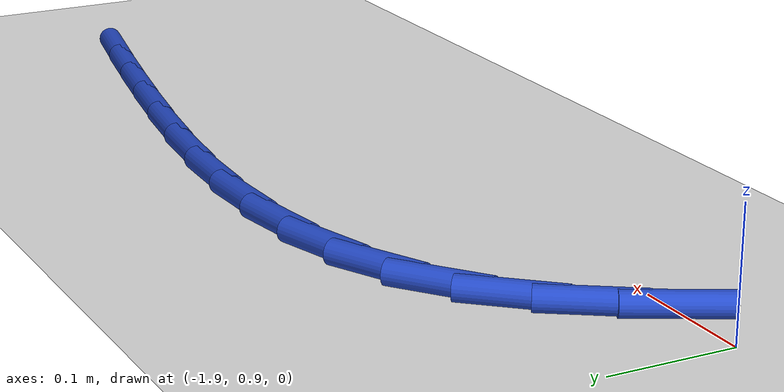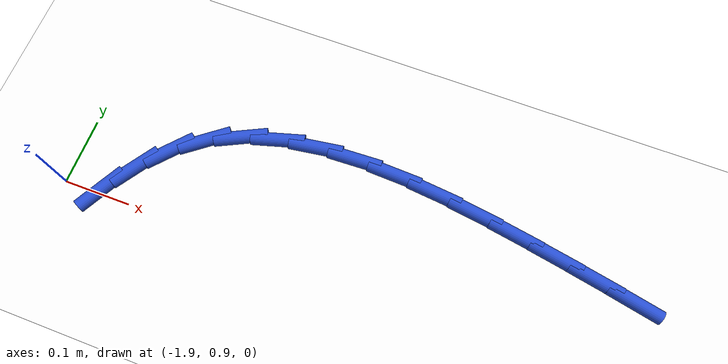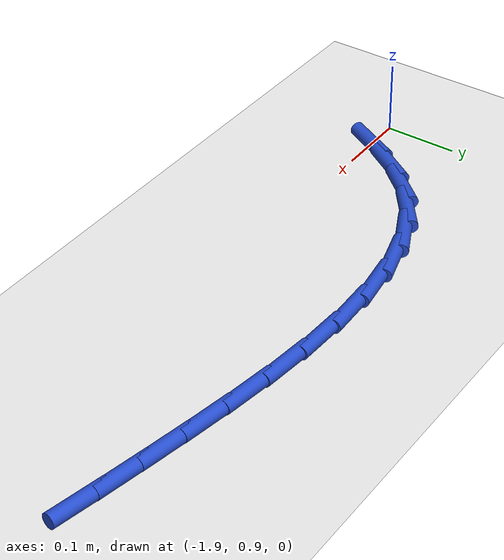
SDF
<sdf version="1.6">
 <world name="default">
  <model name="ground_plane">
   <static>1</static>
   <link name="link">
    <collision name="collision">
     <geometry><plane><normal>0 0 1</normal><size>100 100</size></plane></geometry>
     <surface><friction><ode><mu>100</mu><mu2>50</mu2></ode></friction></surface>
    </collision>
    <visual name="visual">
     <cast_shadows>0</cast_shadows>
     <geometry><plane><normal>0 0 1</normal><size>100 100</size></plane></geometry>
     <material>
      <script><uri>file://media/materials/scripts/gazebo.material</uri><name>Gazebo/WhiteGlow</name></script>
     </material>
    </visual>
   </link>
  </model>
  <model name="line">
   <link name="link_28">
    <pose>-1.0866594706176693 1.0142005599150594 0.01 0 1.57 -0.2025015816724582</pose>
    <collision name="collision">
     <geometry><cylinder><radius>0.01</radius><length>0.08</length></cylinder></geometry>
    </collision>
    <visual name="visual">
     <material>
      <script><name>Gazebo/Blue</name><uri>file://media/materials/scripts/gazebo.material</uri></script>
     </material>
     <geometry><cylinder><radius>0.01</radius><length>0.08</length></cylinder></geometry>
    </visual>
   </link>
   <link name="link_29">
    <pose>-1.1449752984804304 1.0261737171116494 0.01 0 1.57 -0.18941347155247415</pose>
    <collision name="collision">
     <geometry><cylinder><radius>0.01</radius><length>0.08</length></cylinder></geometry>
    </collision>
    <visual name="visual">
     <material>
      <script><name>Gazebo/Blue</name><uri>file://media/materials/scripts/gazebo.material</uri></script>
     </material>
     <geometry><cylinder><radius>0.01</radius><length>0.08</length></cylinder></geometry>
    </visual>
   </link>
   <link name="link_30">
    <pose>-1.2047873767346604 1.0376403913428236 0.01 0 1.57 -0.17870041128989866</pose>
    <collision name="collision">
     <geometry><cylinder><radius>0.01</radius><length>0.08</length></cylinder></geometry>
    </collision>
    <visual name="visual">
     <material>
      <script><name>Gazebo/Blue</name><uri>file://media/materials/scripts/gazebo.material</uri></script>
     </material>
     <geometry><cylinder><radius>0.01</radius><length>0.08</length></cylinder></geometry>
    </visual>
   </link>
   <link name="link_31">
    <pose>-1.2662910981915176 1.0487496378058252 0.01 0 1.57 -0.16461925905895283</pose>
    <collision name="collision">
     <geometry><cylinder><radius>0.01</radius><length>0.08</length></cylinder></geometry>
    </collision>
    <visual name="visual">
     <material>
      <script><name>Gazebo/Blue</name><uri>file://media/materials/scripts/gazebo.material</uri></script>
     </material>
     <geometry><cylinder><radius>0.01</radius><length>0.08</length></cylinder></geometry>
    </visual>
   </link>
   <link name="link_32">
    <pose>-1.3292707312771508 1.0592119775839866 0.01 0 1.57 -0.13777691609005377</pose>
    <collision name="collision">
     <geometry><cylinder><radius>0.01</radius><length>0.08</length></cylinder></geometry>
    </collision>
    <visual name="visual">
     <material>
      <script><name>Gazebo/Blue</name><uri>file://media/materials/scripts/gazebo.material</uri></script>
     </material>
     <geometry><cylinder><radius>0.01</radius><length>0.08</length></cylinder></geometry>
    </visual>
   </link>
   <link name="link_33">
    <pose>-1.3928437887025693 1.0680267233346923 0.01 0 1.57 -0.09620882565030191</pose>
    <collision name="collision">
     <geometry><cylinder><radius>0.01</radius><length>0.08</length></cylinder></geometry>
    </collision>
    <visual name="visual">
     <material>
      <script><name>Gazebo/Blue</name><uri>file://media/materials/scripts/gazebo.material</uri></script>
     </material>
     <geometry><cylinder><radius>0.01</radius><length>0.08</length></cylinder></geometry>
    </visual>
   </link>
   <link name="link_34">
    <pose>-1.4560668341571272 1.0741281752125935 0.01 0 1.57 -0.03748402119672829</pose>
    <collision name="collision">
     <geometry><cylinder><radius>0.01</radius><length>0.08</length></cylinder></geometry>
    </collision>
    <visual name="visual">
     <material>
      <script><name>Gazebo/Blue</name><uri>file://media/materials/scripts/gazebo.material</uri></script>
     </material>
     <geometry><cylinder><radius>0.01</radius><length>0.08</length></cylinder></geometry>
    </visual>
   </link>
   <link name="link_35">
    <pose>-1.5179964313301824 1.0764506333723416 0.01 0 1.57 0.0422285377601479</pose>
    <collision name="collision">
     <geometry><cylinder><radius>0.01</radius><length>0.08</length></cylinder></geometry>
    </collision>
    <visual name="visual">
     <material>
      <script><name>Gazebo/Blue</name><uri>file://media/materials/scripts/gazebo.material</uri></script>
     </material>
     <geometry><cylinder><radius>0.01</radius><length>0.08</length></cylinder></geometry>
    </visual>
   </link>
   <link name="link_36">
    <pose>-1.5776891439110905 1.073928397968588 0.01 0 1.57 0.14812442306628515</pose>
    <collision name="collision">
     <geometry><cylinder><radius>0.01</radius><length>0.08</length></cylinder></geometry>
    </collision>
    <visual name="visual">
     <material>
      <script><name>Gazebo/Blue</name><uri>file://media/materials/scripts/gazebo.material</uri></script>
     </material>
     <geometry><cylinder><radius>0.01</radius><length>0.08</length></cylinder></geometry>
    </visual>
   </link>
   <link name="link_37">
    <pose>-1.6342015355892079 1.0654957691559837 0.01 0 1.57 0.28605671512212055</pose>
    <collision name="collision">
     <geometry><cylinder><radius>0.01</radius><length>0.08</length></cylinder></geometry>
    </collision>
    <visual name="visual">
     <material>
      <script><name>Gazebo/Blue</name><uri>file://media/materials/scripts/gazebo.material</uri></script>
     </material>
     <geometry><cylinder><radius>0.01</radius><length>0.08</length></cylinder></geometry>
    </visual>
   </link>
   <link name="link_38">
    <pose>-1.68659017005389 1.0500870470891803 0.01 0 1.57 0.46008764000675506</pose>
    <collision name="collision">
     <geometry><cylinder><radius>0.01</radius><length>0.08</length></cylinder></geometry>
    </collision>
    <visual name="visual">
     <material>
      <script><name>Gazebo/Blue</name><uri>file://media/materials/scripts/gazebo.material</uri></script>
     </material>
     <geometry><cylinder><radius>0.01</radius><length>0.08</length></cylinder></geometry>
    </visual>
   </link>
   <link name="link_39">
    <pose>-1.7339116109944936 1.0266365319228288 0.01 0 1.57 0.6654126942764104</pose>
    <collision name="collision">
     <geometry><cylinder><radius>0.01</radius><length>0.08</length></cylinder></geometry>
    </collision>
    <visual name="visual">
     <material>
      <script><name>Gazebo/Blue</name><uri>file://media/materials/scripts/gazebo.material</uri></script>
     </material>
     <geometry><cylinder><radius>0.01</radius><length>0.08</length></cylinder></geometry>
    </visual>
   </link>
   <link name="link_40">
    <pose>-1.775286320322301 0.9941650578013922 0.01 0 1.57 0.8548693427442812</pose>
    <collision name="collision">
     <geometry><cylinder><radius>0.01</radius><length>0.08</length></cylinder></geometry>
    </collision>
    <visual name="visual">
     <material>
      <script><name>Gazebo/Blue</name><uri>file://media/materials/scripts/gazebo.material</uri></script>
     </material>
     <geometry><cylinder><radius>0.01</radius><length>0.08</length></cylinder></geometry>
    </visual>
   </link>
   <link name="link_41">
    <pose>-1.810935319922369 0.9531838891612238 0.01 0 1.57 0.9936553991991819</pose>
    <collision name="collision">
     <geometry><cylinder><radius>0.01</radius><length>0.08</length></cylinder></geometry>
    </collision>
    <visual name="visual">
     <material>
      <script><name>Gazebo/Blue</name><uri>file://media/materials/scripts/gazebo.material</uri></script>
     </material>
     <geometry><cylinder><radius>0.01</radius><length>0.08</length></cylinder></geometry>
    </visual>
   </link>
   <link name="link_42">
    <pose>-1.842007393593833 0.9054607094375146 0.01 0 1.57 1.0869415548176242</pose>
    <collision name="collision">
     <geometry><cylinder><radius>0.01</radius><length>0.08</length></cylinder></geometry>
    </collision>
    <visual name="visual">
     <material>
      <script><name>Gazebo/Blue</name><uri>file://media/materials/scripts/gazebo.material</uri></script>
     </material>
     <geometry><cylinder><radius>0.01</radius><length>0.08</length></cylinder></geometry>
    </visual>
   </link>
  </model>
 </world>
</sdf>
